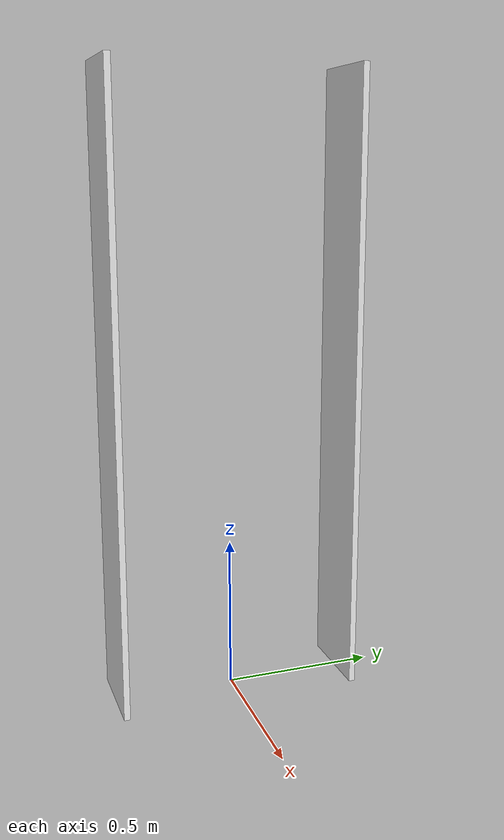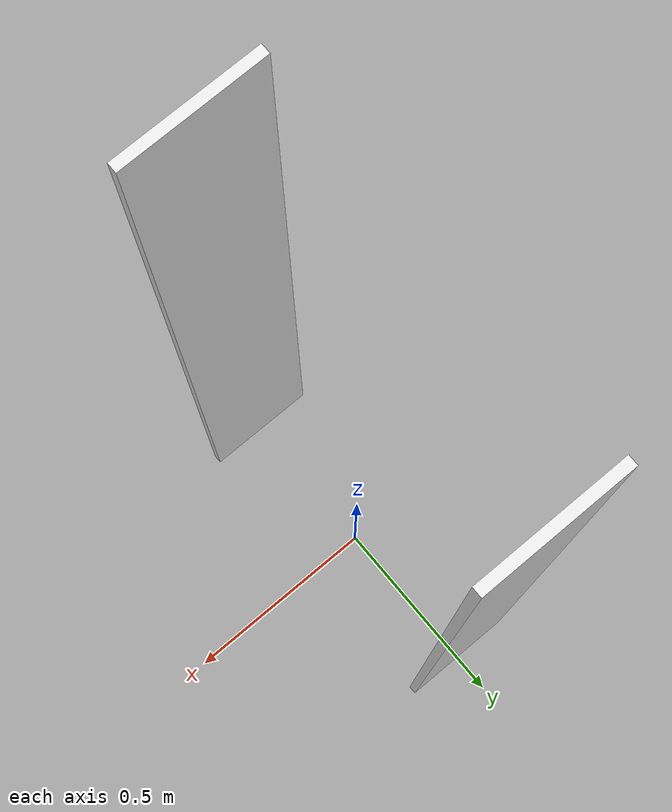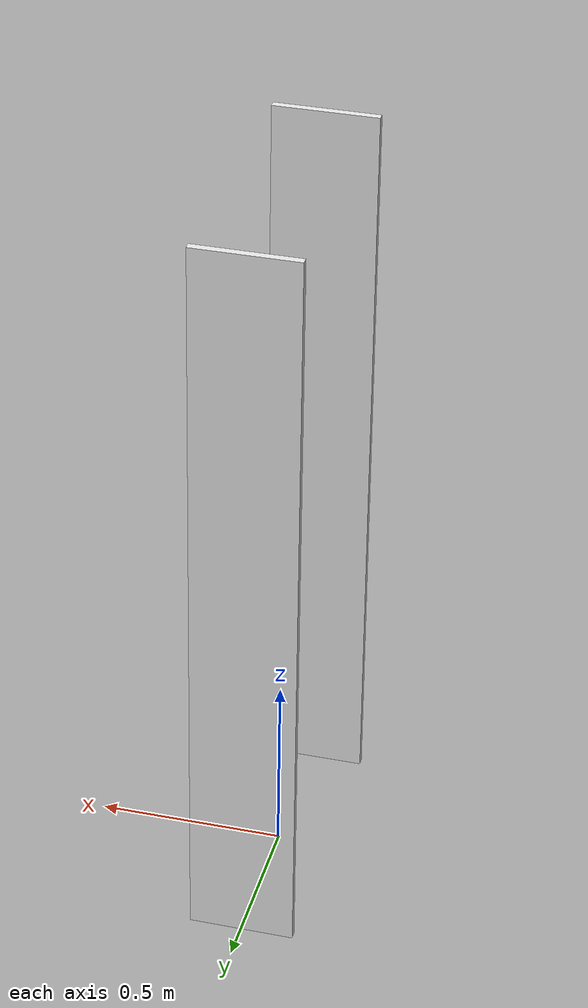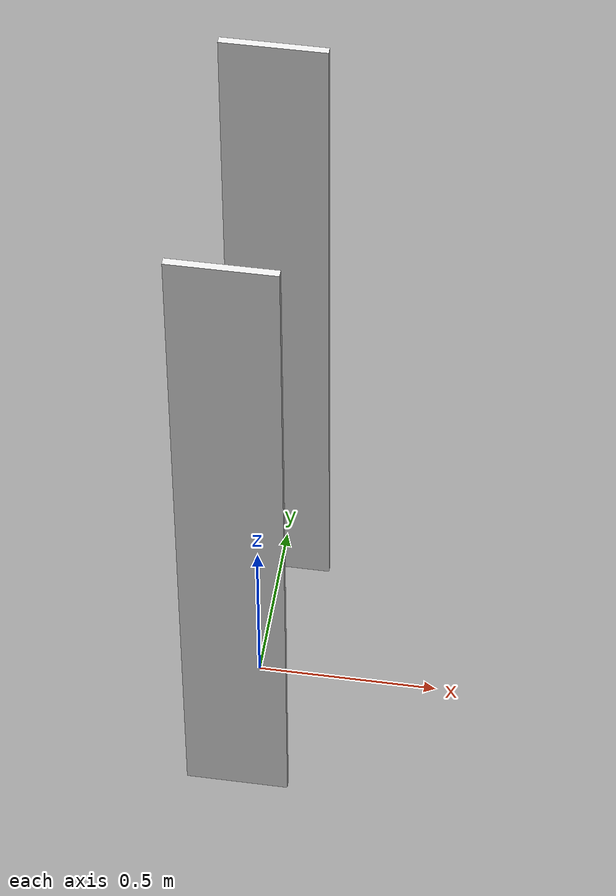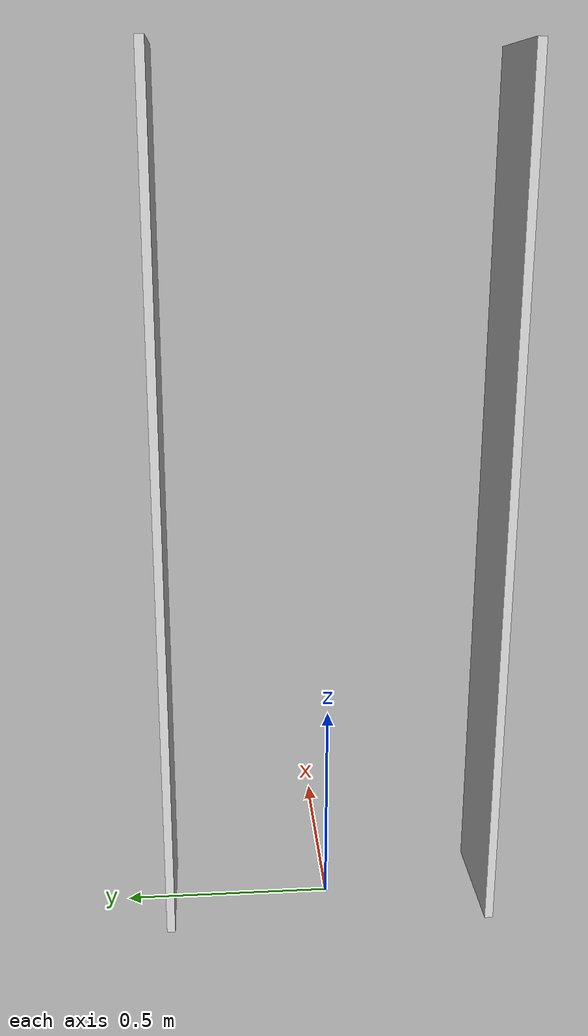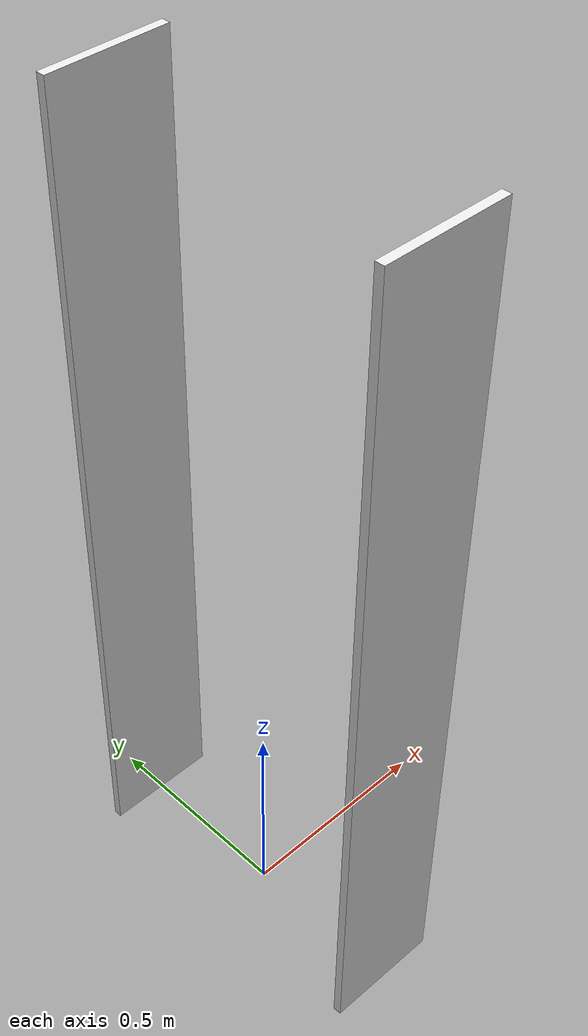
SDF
<?xml version="1.0"?>
<sdf version="1.6">
  <model name="rgo2015/cabinet/cabinet_frame">
    <link name="1_link">
      <collision name="1_col">
        <geometry>
          <box>
            <size>0.28 0.02 2.02</size>
          </box>
        </geometry>
      </collision>
      <visual name="1_vis">
        <geometry>
          <box>
            <size>0.28 0.02 2.02</size>
          </box>
        </geometry>
        <material>
          <ambient>0.9 0.9 0.9 1</ambient>
        </material>
      </visual>
      <pose>0.0 -0.39 1.01 0 0 0</pose>
    </link>
    <link name="2_link">
      <collision name="2_col">
        <geometry>
          <box>
            <size>0.28 0.02 2.02</size>
          </box>
        </geometry>
      </collision>
      <visual name="2_vis">
        <geometry>
          <box>
            <size>0.28 0.02 2.02</size>
          </box>
        </geometry>
        <material>
          <ambient>0.9 0.9 0.9 1</ambient>
        </material>
      </visual>
      <pose>0.0 0.39 1.01 0 0 0</pose>
    </link>
    <static>true</static>
  </model>
</sdf>
